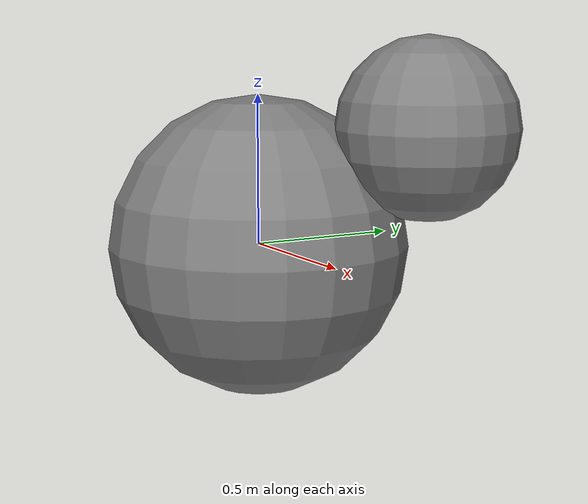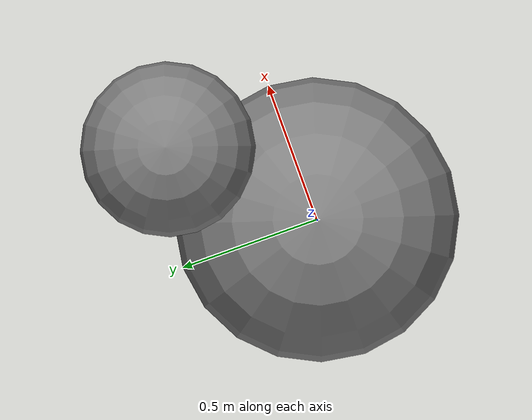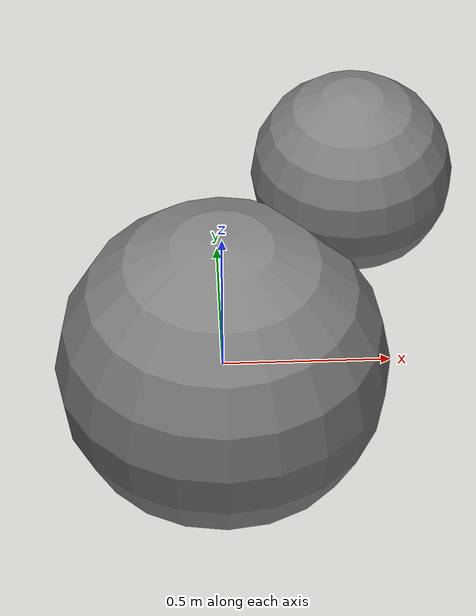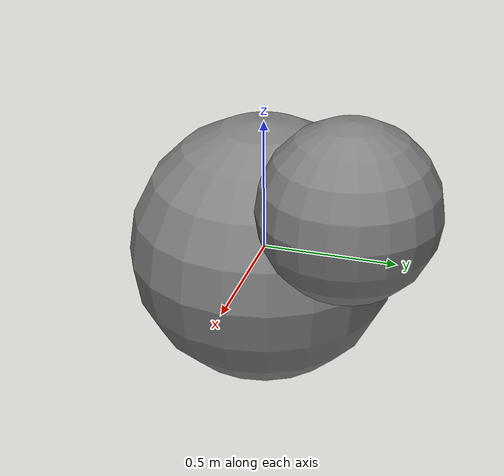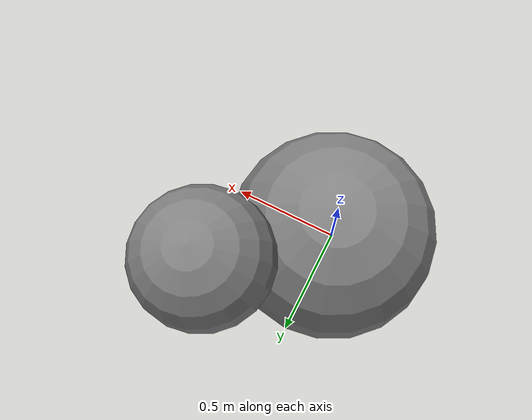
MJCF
<mujoco model="sphere_sphere_diag">
            <option gravity="0 0 0" timestep="0.001"/>
            <worldbody>
                <body name="s1" pos="0 0 0">
                    <joint type="free"/>
                    <geom type="sphere" size="0.5"/>
                </body>
                <body name="s2" pos="0.4 0.4 0.4">
                    <joint type="free"/>
                    <geom type="sphere" size="0.3"/>
                </body>
            </worldbody>
        </mujoco>
